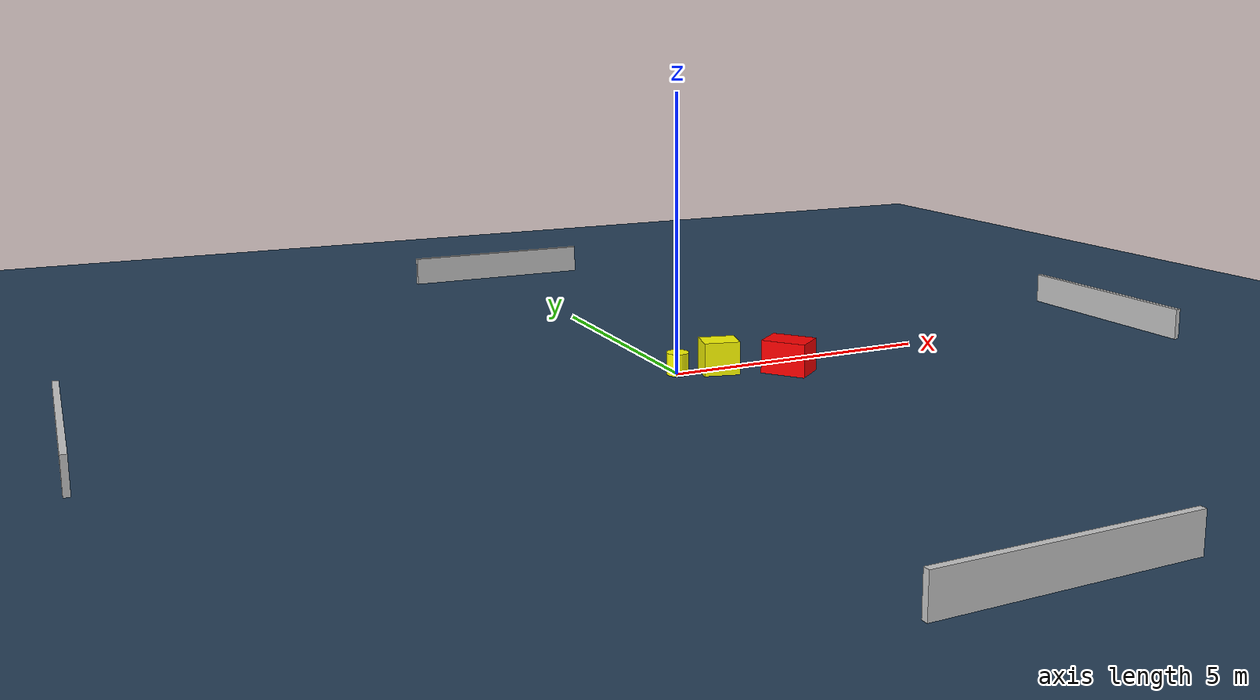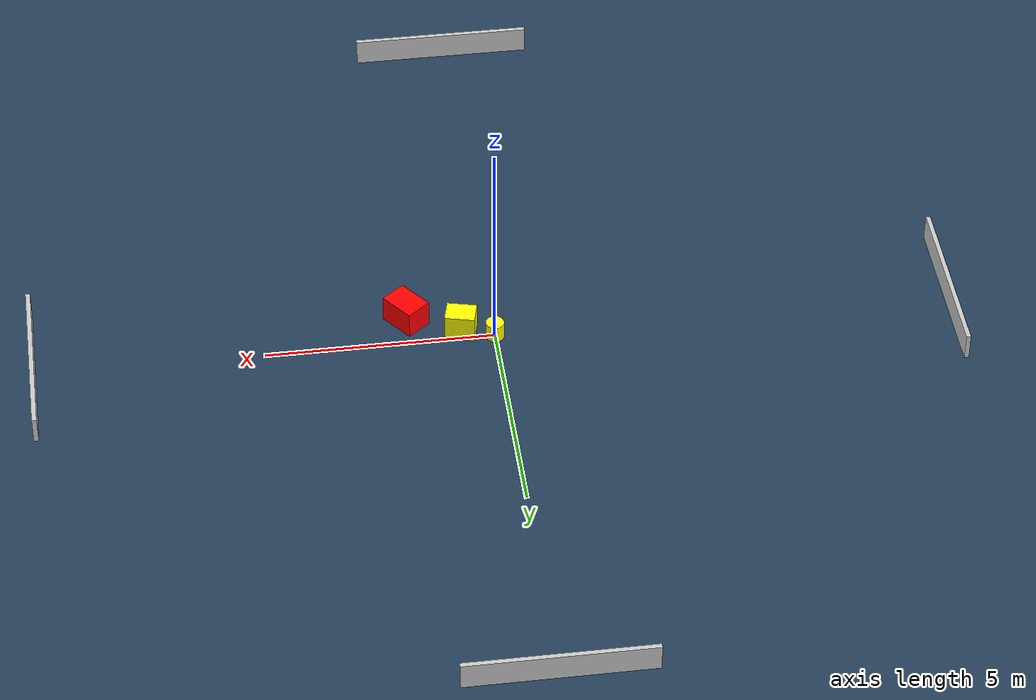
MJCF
<?xml version="1.0" ?>
<mujoco model="generated_environment">
  <option timestep="0.01" integrator="RK4" cone="elliptic"/>
  <default>
    <geom density="1"/>
  </default>
  <asset>
    <texture builtin="gradient" height="3072" name="skybox" rgb1="0.3 0.5 0.7" rgb2="0 0 0" type="skybox" width="512"/>
    <texture builtin="checker" height="300" name="groundplane" rgb1="0.2 0.3 0.4" rgb2="0.1 0.2 0.3" type="2d" width="300"/>
    <material name="groundplane" reflectance="0.2" texrepeat="5 5" texture="groundplane"/>
  </asset>
  <worldbody>
    <light dir="0 0 -1" directional="true" pos="0 0 1.5"/>
    <geom condim="3" friction="0.5 0.005 0.001" material="groundplane" name="floor" pos="0 0 0" size="0 0 0.05" type="plane"/>
    <body name="walls">
      <geom name="wall_1" condim="4" pos="-10.0 0.0 0.3" rgba="0.800000011920929 0.800000011920929 0.800000011920929 1.0" size="0.05 2.0 0.3" type="box"/>
      <geom name="wall_2" condim="4" pos="10.0 0.0 0.3" rgba="0.800000011920929 0.800000011920929 0.800000011920929 1.0" size="0.05 2.0 0.3" type="box"/>
      <geom name="wall_3" condim="4" pos="0.0 -10.0 0.3" rgba="0.800000011920929 0.800000011920929 0.800000011920929 1.0" size="2.0 0.05 0.3" type="box"/>
      <geom name="wall_4" condim="4" pos="0.0 10.0 0.3" rgba="0.800000011920929 0.800000011920929 0.800000011920929 1.0" size="2.0 0.05 0.3" type="box"/>
    </body>
    <body name="robot">
      <joint name="joint_x" type="slide" pos="0 0 0" axis="1 0 0"/>
      <joint name="joint_y" type="slide" pos="0 0 0" axis="0 1 0"/>
      <geom name="robot" type="cylinder" pos="0.0 0.0 0.2" size="0.2 0.2 0.0" mass="5.0" friction="1.0 0.005 0.0001" condim="4" rgba="1.0 1.0 0.0 1.0"/>
    </body>
    <body name="obstacle_1_movable">
      <geom name="obstacle_1_movable" condim="4" pos="0.7224515796887181 -0.21735705557447887 0.3" euler="0 0 76.23826603454276" friction="0.0 0.005 0.001" rgba="1.0 1.0 0.0 1.0" size="0.24984964502518697 0.3262318451086168 0.3" type="box" mass="0.1"/>
      <joint type="free"/>
    </body>
    <body name="obstacle_2_static">
      <geom name="obstacle_2_static" condim="4" pos="1.8613058008022634 -0.7296346393271008 0.3" euler="0 0 308.184723867564" friction="0.0 0.005 0.001" rgba="1.0 0.0 0.0 1.0" size="0.4109708918672028 0.2998439912272199 0.3" type="box"/>
    </body>
  </worldbody>
  <actuator>
    <motor name="actuator_x" joint="joint_x" gear="1" ctrlrange="-1 1"/>
    <motor name="actuator_y" joint="joint_y" gear="1" ctrlrange="-1 1"/>
  </actuator>
</mujoco>
